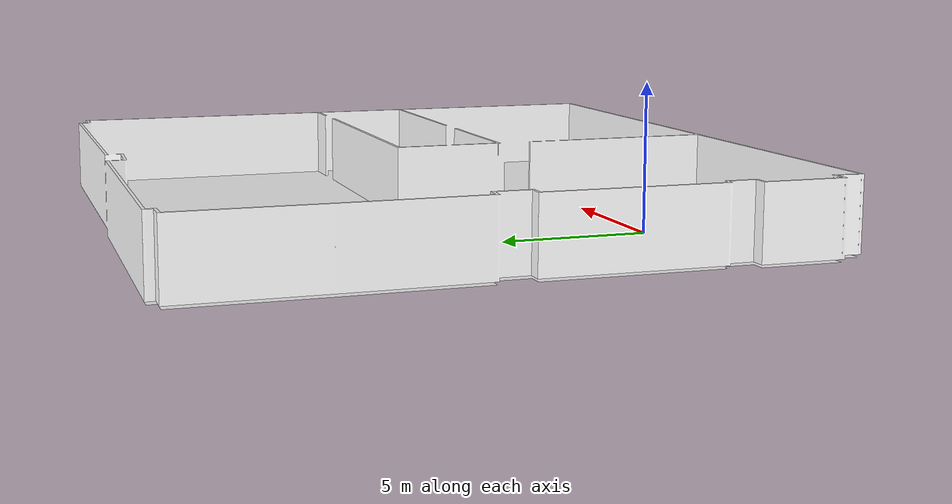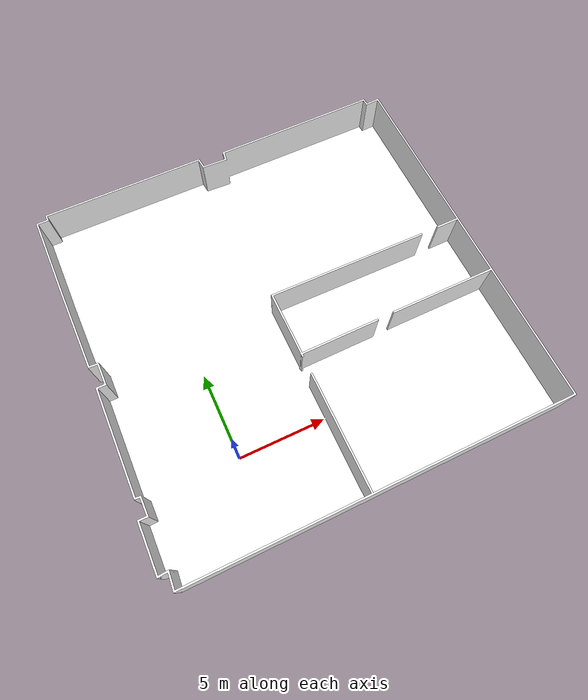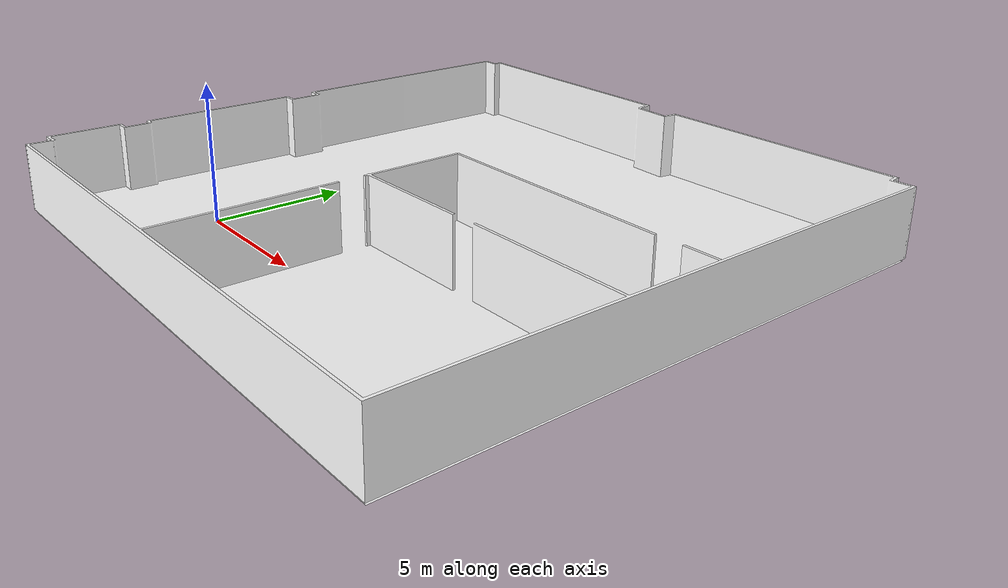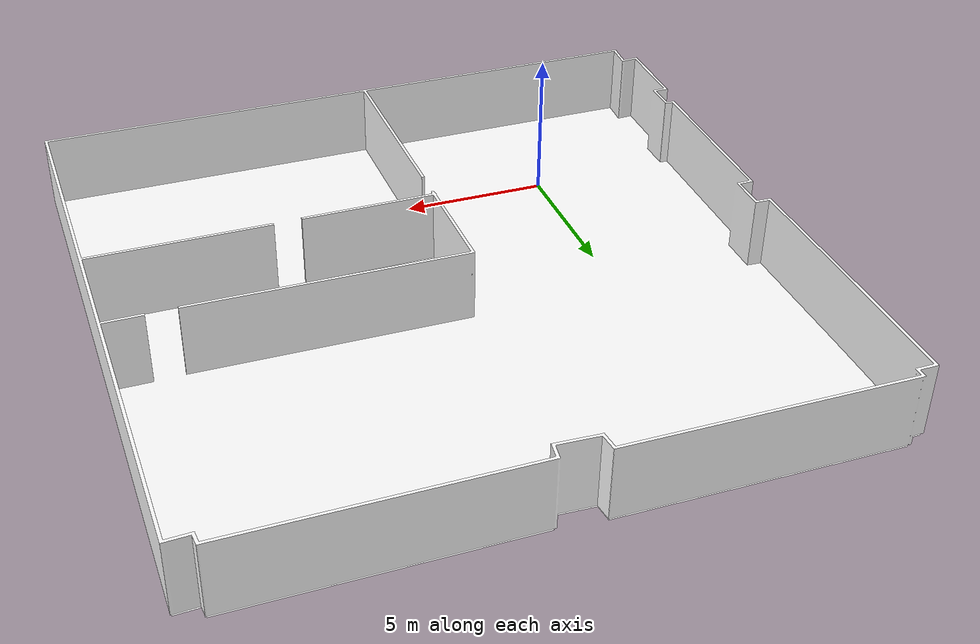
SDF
<?xml version='1.0' encoding='utf-8'?>
<sdf version="1.7">
  <model name="suntech_office_office">
    <static>true</static>
    <link name="floor_1">
      <visual name="visual">
        <geometry>
          <mesh>
            <uri>model://suntech_office_office/meshes/floor_1.obj</uri>
          </mesh>
        </geometry>
        <material>
          <diffuse>1.0 1.0 1.0</diffuse>
          <specular>0.1 0.1 0.1</specular>
          <pbr>
            <metal>
              <metalness>0.0</metalness>
              <albedo_map>model://suntech_office_office/meshes/blue_linoleum.png</albedo_map>
            </metal>
          </pbr>
          <script>
            <uri>model://suntech_office_office/meshes/</uri>
            <name>floor_1_Diffuse</name>
          </script>
        </material>
      </visual>
      <collision name="collision">
        <geometry>
          <mesh>
            <uri>model://suntech_office_office/meshes/floor_1.obj</uri>
          </mesh>
        </geometry>
        <surface>
          <contact>
            <collide_bitmask>0x01</collide_bitmask>
          </contact>
        </surface>
      </collision>
    </link>
    <link name="wall_1">
      <visual name="wall_1">
        <geometry>
          <mesh>
            <uri>model://suntech_office_office/meshes/wall_1.obj</uri>
          </mesh>
        </geometry>
        <material>
          <diffuse>1.0 1.0 1.0</diffuse>
          <specular>0.1 0.1 0.1</specular>
          <pbr>
            <metal>
              <metalness>0.0</metalness>
              <albedo_map>model://suntech_office_office/meshes/default.png</albedo_map>
            </metal>
          </pbr>
          <script>
            <uri>model://suntech_office_office/meshes/</uri>
            <name>wall_1_Diffuse</name>
          </script>
        </material>
      </visual>
      <collision name="collision">
        <geometry>
          <mesh>
            <uri>model://suntech_office_office/meshes/wall_1.obj</uri>
          </mesh>
        </geometry>
        <surface>
          <contact>
            <collide_bitmask>0x01</collide_bitmask>
          </contact>
        </surface>
      </collision>
    </link>
  </model>
</sdf>
